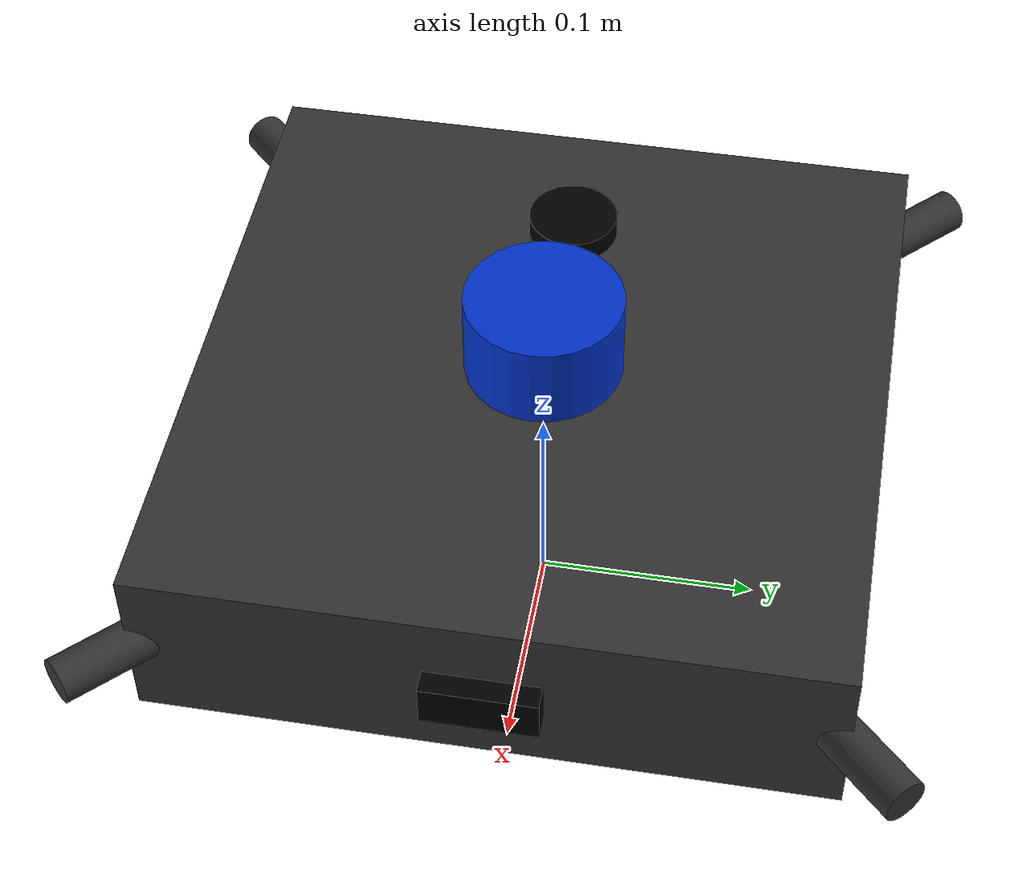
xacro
<?xml version="1.0"?>
<robot name="uav_drone" xmlns:xacro="http://www.ros.org/wiki/xacro">

  <!-- Include Sub-modules -->
  <xacro:include filename="$(find uav_description)/urdf/drone_core.xacro"/>
  <xacro:include filename="$(find uav_description)/urdf/sensors.xacro"/>
  <xacro:include filename="$(find uav_description)/urdf/gazebo_sensors.xacro"/>

</robot>

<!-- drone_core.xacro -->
<robot xmlns:xacro="http://www.ros.org/wiki/xacro">

  <!-- Materials -->
  <material name="dark_grey">
    <color rgba="0.2 0.2 0.2 1.0"/>
  </material>
  <material name="red">
    <color rgba="0.8 0.1 0.1 1.0"/>
  </material>

  <!-- Dummy root link for ROS 2 / KDL compliance -->
  <link name="base_footprint"/>

  <joint name="base_footprint_joint" type="fixed">
    <parent link="base_footprint"/>
    <child link="base_link"/>
    <origin xyz="0 0 0.1" rpy="0 0 0"/>
  </joint>

  <!-- Main Chassis Frame -->
  <link name="base_link">
    <visual>
      <geometry>
        <box size="0.30 0.30 0.08"/>
      </geometry>
      <material name="dark_grey"/>
    </visual>
    <collision>
      <geometry>
        <box size="0.30 0.30 0.08"/>
      </geometry>
    </collision>
    <inertial>
      <mass value="1.5"/>
      <origin xyz="0 0 0" rpy="0 0 0"/>
      <inertia ixx="0.012" ixy="0.0" ixz="0.0"
               iyy="0.012" iyz="0.0"
               izz="0.022"/>
    </inertial>
  </link>

  <!-- Arm Macro -->
  <xacro:macro name="rotor_arm" params="prefix x_mult y_mult">
    <link name="arm_${prefix}">
      <visual>
        <geometry>
          <cylinder length="0.15" radius="0.01"/>
        </geometry>
        <material name="dark_grey"/>
      </visual>
      <inertial>
        <mass value="0.05"/>
        <inertia ixx="0.0001" ixy="0" ixz="0" iyy="0.0001" iyz="0" izz="0.0001"/>
      </inertial>
    </link>

    <joint name="arm_${prefix}_joint" type="fixed">
      <parent link="base_link"/>
      <child link="arm_${prefix}"/>
      <origin xyz="${x_mult * 0.12} ${y_mult * 0.12} 0" rpy="0 1.5708 ${x_mult * y_mult * 0.7854}"/>
    </joint>
  </xacro:macro>

  <!-- Instantiate 4 Arms -->
  <xacro:rotor_arm prefix="front_right" x_mult="1" y_mult="-1"/>
  <xacro:rotor_arm prefix="front_left"  x_mult="1" y_mult="1"/>
  <xacro:rotor_arm prefix="back_right"  x_mult="-1" y_mult="-1"/>
  <xacro:rotor_arm prefix="back_left"   x_mult="-1" y_mult="1"/>

</robot>

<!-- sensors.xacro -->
<robot xmlns:xacro="http://www.ros.org/wiki/xacro">

  <material name="blue">
    <color rgba="0.0 0.2 0.8 1.0"/>
  </material>
  <material name="black">
    <color rgba="0.0 0.0 0.0 1.0"/>
  </material>

  <!-- 3D LiDAR Mount -->
  <link name="lidar_link">
    <visual>
      <geometry>
        <cylinder length="0.04" radius="0.035"/>
      </geometry>
      <material name="blue"/>
    </visual>
    <collision>
      <geometry>
        <cylinder length="0.04" radius="0.035"/>
      </geometry>
    </collision>
    <inertial>
      <mass value="0.1"/>
      <inertia ixx="0.00005" ixy="0" ixz="0" iyy="0.00005" iyz="0" izz="0.00005"/>
    </inertial>
  </link>

  <joint name="lidar_joint" type="fixed">
    <parent link="base_link"/>
    <child link="lidar_link"/>
    <origin xyz="0.0 0.0 0.06" rpy="0 0 0"/>
  </joint>

  <!-- Forward-Facing Camera Mount -->
  <link name="camera_link">
    <visual>
      <geometry>
        <box size="0.02 0.05 0.02"/>
      </geometry>
      <material name="black"/>
    </visual>
    <collision>
      <geometry>
        <box size="0.02 0.05 0.02"/>
      </geometry>
    </collision>
    <inertial>
      <mass value="0.03"/>
      <inertia ixx="0.00001" ixy="0" ixz="0" iyy="0.00001" iyz="0" izz="0.00001"/>
    </inertial>
  </link>

  <joint name="camera_joint" type="fixed">
    <parent link="base_link"/>
    <child link="camera_link"/>
    <origin xyz="0.15 0.0 0.0" rpy="0 0 0"/>
  </joint>

  <!-- Optical Frame Offset for Standard ROS 2 Camera Conventions -->
  <link name="camera_link_optical"/>
  <joint name="camera_optical_joint" type="fixed">
    <parent link="camera_link"/>
    <child link="camera_link_optical"/>
    <origin xyz="0 0 0" rpy="-1.5708 0 -1.5708"/>
  </joint>

  <!-- IMU Sensor Link -->
  <link name="imu_link"/>
  <joint name="imu_joint" type="fixed">
    <parent link="base_link"/>
    <child link="imu_link"/>
    <origin xyz="0.0 0.0 0.0" rpy="0 0 0"/>
  </joint>

  <!-- GPS Antenna Link -->
  <link name="gps_link">
    <visual>
      <geometry>
        <cylinder length="0.01" radius="0.02"/>
      </geometry>
      <material name="black"/>
    </visual>
  </link>

  <joint name="gps_joint" type="fixed">
    <parent link="base_link"/>
    <child link="gps_link"/>
    <origin xyz="-0.08 0.0 0.05" rpy="0 0 0"/>
  </joint>

</robot>
